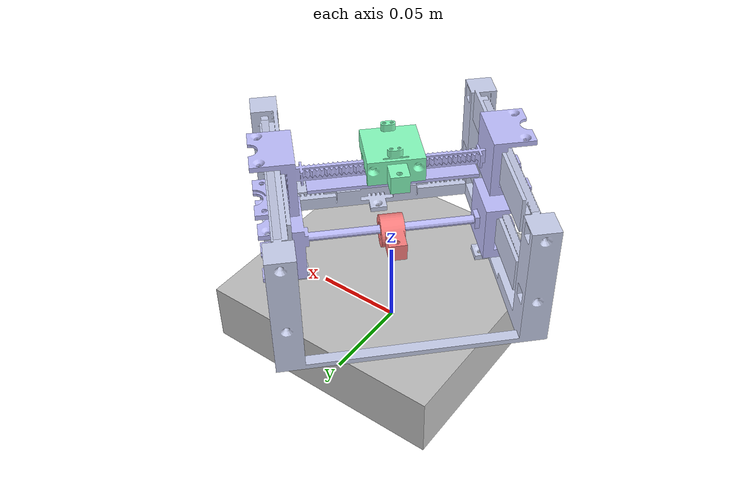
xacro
<?xml version="1.0"?>
<!-- Revolute-Revolute Manipulator -->
<robot name="robot_test" xmlns:xacro="http://www.ros.org/wiki/xacro">

<link name="world"/>
    <link name="base_link">

<inertial>
            <origin xyz="0 0 0.0175" rpy="0 0 0" />
            <mass value="0.168" />
              <inertia ixx="0.0005" ixy="0" ixz="0" iyy="0.00049" iyz="0" izz="0.00097" />
        </inertial>

        <visual>
            <origin xyz="0 0 0.0175" rpy="0 0 0" />
            <geometry>
                <box size="0.14 0.14 0.035" />
            </geometry>
            <material name="">
                <color rgba="0.752941176470588 0.752941176470588 0.752941176470588 1" />
            </material>
        </visual>
        <collision>
            <origin xyz="0 0 0.0175" rpy="0 0 0" />
            <geometry>
                <box size="0.14 0.14 0.035" />
            </geometry>
        </collision>
    </link>

    <joint name="Joint0" type="fixed">
        <parent link="world" />
        <child link="base_link" />
    </joint>
 <link name="Link1">
<inertial>
            <origin xyz="0 0.04 0" rpy="0 0 0" />
            <mass value="0.125076916309071" />
            <inertia ixx="0.000213301900832475" ixy="7.20042983445819E-14" ixz="1.93294951442505E-15" iyy="0.000241629980148854" iyz="-3.15911644980272E-07" izz="15.71772481619727E-05" />
        </inertial>

        <visual>
            <origin xyz="0 0 0" rpy="0 0 0" />
            <geometry>
                <mesh filename="package://asm_robotv2_4/meshes/Link1.STL" />
            </geometry>
            <material name="">
                <color rgba="0.792156862745098 0.819607843137255 0.933333333333333 1" />
            </material>
        </visual>
        <collision>
            <origin xyz="0 0 0" rpy="0 0 0" />
            <geometry>
                <mesh filename="package://asm_robotv2_4/meshes/Link1.STL" />
            </geometry>
        </collision>
    </link>
    <joint name="Joint1" type="revolute">
        <origin xyz="0 0 0.04" rpy="1.5708 0 -2.3561" />
        <parent link="base_link" />
        <child link="Link1" />
        <axis xyz="0 1 0" />
        <limit effort="3" velocity="5.0" lower="-1.34" upper="1.34" />
        <dynamics damping="0.7"/>
    </joint>
    <link name="Link2">
<inertial>
            <origin xyz="0 0 0" rpy="0 0 0" />
            <mass value="0.0217880910599681" />
            <inertia ixx="0.000003227" ixy="0" ixz="0" iyy="0.00005049" iyz="0" izz="0.00005" />
        </inertial>
        <visual>
            <origin xyz="0 -0.015 0.02" rpy="-1.5708 1.5708 0" />
            <geometry>
                <mesh filename="package://asm_robotv2_4/meshes/Link2.STL" />
            </geometry>
            <material name="">
                <color rgba="0.752941176470588 0.752941176470588 1 1" />
            </material>
        </visual>
        <collision>
            <origin xyz="0 -0.015 0.02" rpy="-1.5708 1.5708 0" />
            <geometry>
                <mesh filename="package://asm_robotv2_4/meshes/Link2.STL" />
            </geometry>
        </collision>
    </link>
    <joint name="Joint2" type="prismatic">
        <origin xyz="0 0.068 0" rpy="0 0 0" />
        <parent link="Link1" />
        <child link="Link2" />
        <axis xyz="0 0 1" />
        <limit lower="-0.035" upper="0.035" effort="3" velocity="5.0"/>
        <dynamics damping="0.3"/>
    </joint>
  <link name="Link3_1">

<inertial>
            <origin xyz="0 0.001 0" rpy="-1.5708 0 0" />
            <mass value="0.00687392728317165" />
            <inertia ixx="4.68999634639831E-07"
        ixy="-6.61744490042422E-22"
        ixz="-1.20561574279604E-22"
        iyy="5.02478511000677E-07"
        iyz="1.21000404772896E-09"
        izz="8.02816429799795E-07" />
        </inertial>

        <visual>
            <origin xyz="0 0.001 0.02" rpy="-1.5708 0 0" />
            <geometry>
                <mesh filename="package://asm_robotv2_4/meshes/Link3_1.STL" />
            </geometry>
            <material name="">
                <color rgba="0.529411764705882 1 0.752941176470588 1" />
            </material>
        </visual>
        <collision>
            <origin xyz="0 0 0.02" rpy="-1.5708 0 0" />
            <geometry>
                <mesh filename="package://asm_robotv2_4/meshes/Link3_1.STL" />
            </geometry>
        </collision>
    </link>
    <joint name="Joint3_1" type="prismatic">
        <origin xyz="0 0 0" rpy="0 0 0" />
        <parent link="Link2" />
        <child link="Link3_1" />
        <axis xyz="1 0 0" />
        <limit lower="-0.03125" upper="0.03125" effort="3" velocity="5.0" />
        <dynamics damping="0.7"/>
    </joint>
    <link name="Link2_2">

<inertial>
            <origin xyz="0 0 0" rpy="0 0 0" />
            <mass value="0.0198869983841949" />
            <inertia ixx="0.000003227" ixy="0" ixz="0" iyy="0.00005049" iyz="0" izz="0.00005" />
        </inertial>

        <visual>
            <origin xyz="0 0.015 -0.013" rpy="-1.5708 1.5708 0" />
            <geometry>
                <mesh filename="package://asm_robotv2_4/meshes/Link2_2.STL" />
            </geometry>
            <material name="">
                <color rgba="0.752941176470588 0.752941176470588 1 1" />
            </material>
        </visual>
        <collision>
            <origin xyz="0 0.015 -0.013" rpy="-1.5708 1.5708 0" />
            <geometry>
                <mesh filename="package://asm_robotv2_4/meshes/Link2_2.STL" />
            </geometry>
        </collision>
    </link>
    <joint name="Joint2_2" type="prismatic">
        <origin xyz="0 0.028 0" rpy="0 0 0" />
        <parent link="Link1" />
        <child link="Link2_2" />
        <axis xyz="0 0 1" />
        <limit lower="-0.035" upper="0.035" effort="3" velocity="5.0" />
        <dynamics damping="0.7"/>
    </joint>
    <link name="Link3_2">

<inertial>
            <origin xyz="0 0 0" rpy="0 -1.5708 -1.5708" />
            <mass value="0.00392509494863912" />
            <inertia ixx="1.22511067255343E-07"
        ixy="-3.59085107182492E-09"
        ixz="1.01277926249461E-22"
        iyy="2.33144279565317E-07"
        iyz="-1.75258892284673E-23"
        izz="2.06480464452128E-07" />
        </inertial>

        <visual>
            <origin xyz="0 0.008 0.015" rpy="0 -1.5708 -1.5708" />
            <geometry>
                <mesh filename="package://asm_robotv2_4/meshes/Link3_2.STL" />
            </geometry>
            <material name="">
                <color rgba="1 0.501960784313725 0.501960784313725 1" />
            </material>
        </visual>
        <collision>
            <origin xyz="0 0.008 0.015" rpy="0 -1.5708 -1.5708" />
            <geometry>
                <mesh filename="package://asm_robotv2_4/meshes/Link3_2.STL" />
            </geometry>
        </collision>
    </link>
    <joint name="Joint3_2" type="prismatic">
        <origin xyz="0 0 0" rpy="0 0 0" />
        <parent link="Link2_2" />
        <child link="Link3_2" />
        <axis xyz="1 0 0" />
        <limit lower="-0.03125" upper="0.03125" effort="3" velocity="5.0" />
        <dynamics damping="0.7"/>
    </joint>

    <transmission name="trans_Joint1">
            <type>transmission_interface/SimpleTransmission</type>
            <joint name="Joint1">
                <hardwareInterface>hardware_interface/PositionJointInterface</hardwareInterface>
            </joint>
            <actuator name="Joint1_motor">
                <hardwareInterface>hardware_interface/PositionJointInterface</hardwareInterface>
                <mechanicalReduction>1</mechanicalReduction>
            </actuator>
        </transmission>
        <transmission name="trans_Joint2">
            <type>transmission_interface/SimpleTransmission</type>
            <joint name="Joint2">
                <hardwareInterface>hardware_interface/PositionJointInterface</hardwareInterface>
            </joint>
            <actuator name="Joint2_motor">
                <hardwareInterface>hardware_interface/PositionJointInterface</hardwareInterface>
                <mechanicalReduction>1</mechanicalReduction>
            </actuator>
        </transmission>
        <transmission name="trans_Joint3_1">
            <type>transmission_interface/SimpleTransmission</type>
            <joint name="Joint3_1">
                <hardwareInterface>hardware_interface/PositionJointInterface</hardwareInterface>
            </joint>
            <actuator name="Joint3_1_motor">
                <hardwareInterface>hardware_interface/PositionJointInterface</hardwareInterface>
                <mechanicalReduction>1</mechanicalReduction>
            </actuator>
        </transmission>
        <transmission name="trans_Joint2_2">
            <type>transmission_interface/SimpleTransmission</type>
            <joint name="Joint2_2">
                <hardwareInterface>hardware_interface/EffortJointInterface</hardwareInterface>
            </joint>
            <actuator name="Joint2_2_motor">
                <hardwareInterface>hardware_interface/EffortJointInterface</hardwareInterface>
                <mechanicalReduction>1</mechanicalReduction>
            </actuator>
        </transmission>
        <transmission name="trans_Joint3_2">
            <type>transmission_interface/SimpleTransmission</type>
            <joint name="Joint3_2">
                <hardwareInterface>hardware_interface/EffortJointInterface</hardwareInterface>
            </joint>
            <actuator name="Joint3_2_motor">
                <hardwareInterface>hardware_interface/EffortJointInterface</hardwareInterface>
                <mechanicalReduction>1</mechanicalReduction>
            </actuator>
        </transmission>
        <gazebo>
  <plugin name="gazebo_ros_control" filename="libgazebo_ros_control.so">
    <robotNamespace>/robot_test</robotNamespace>
    <robotSimType>gazebo_ros_control/DefaultRobotHWSim</robotSimType>
  </plugin>
</gazebo>
</robot>
